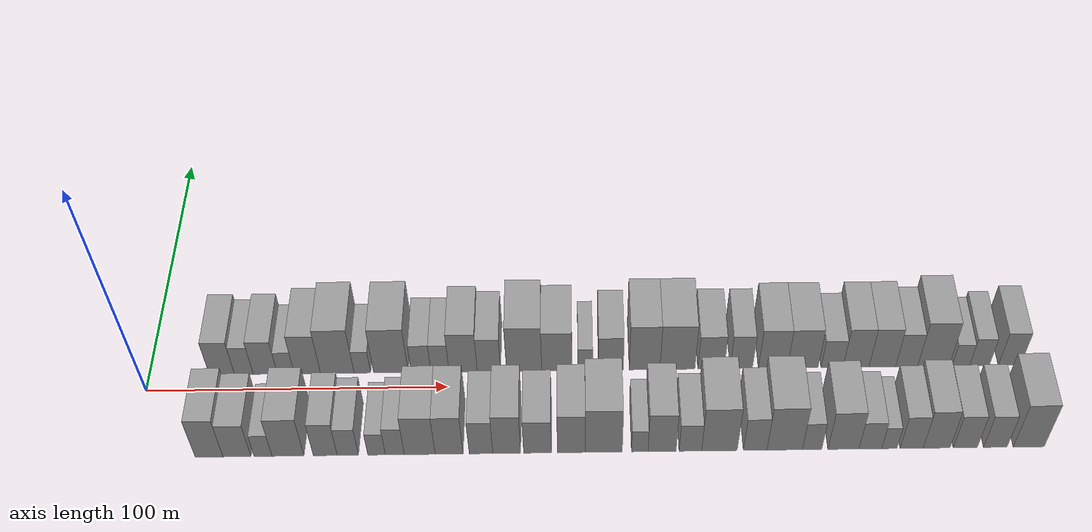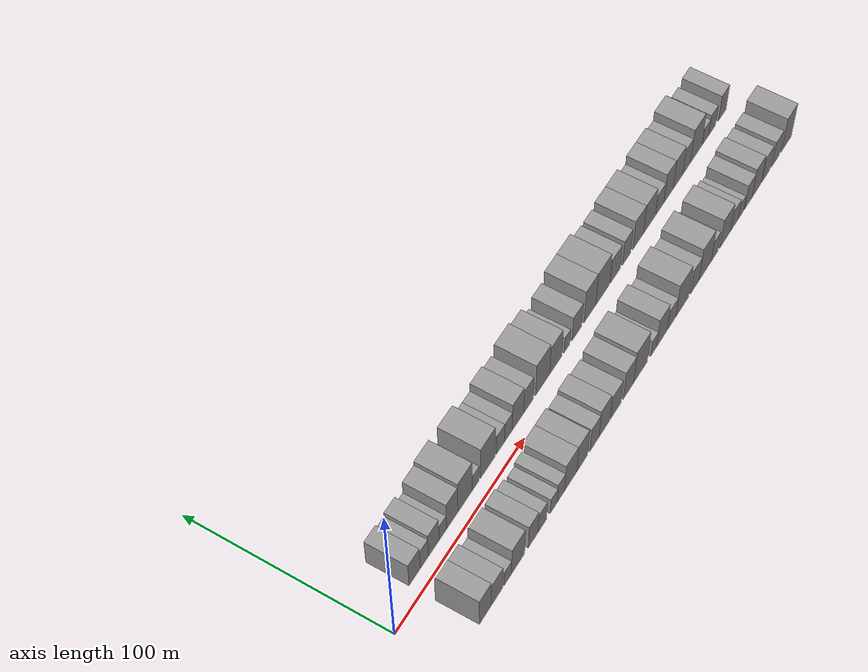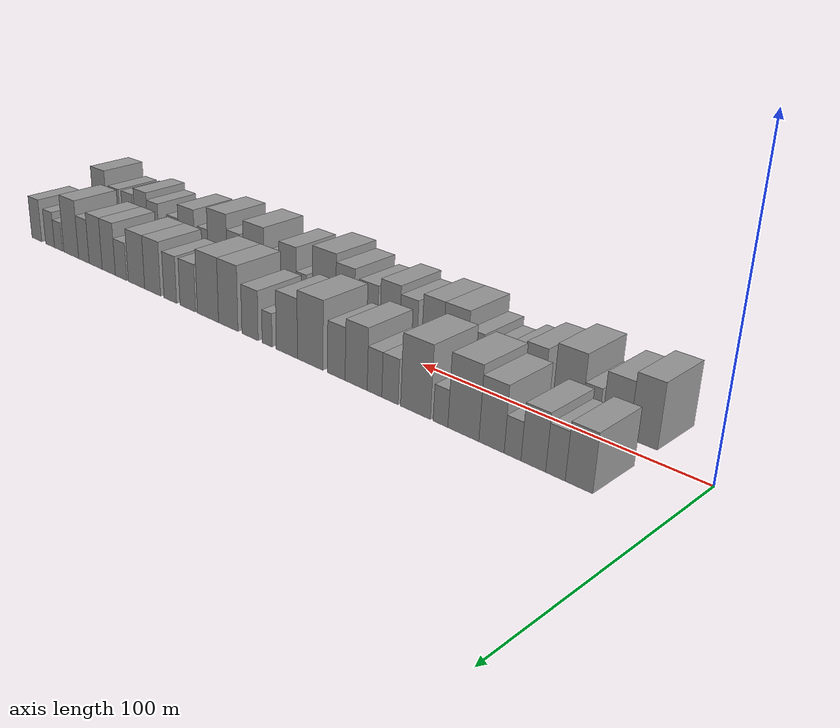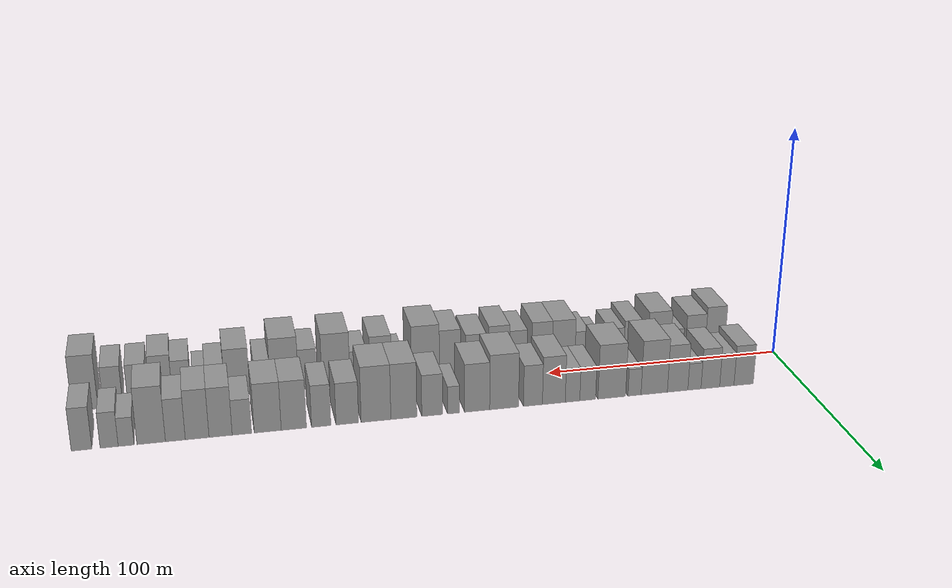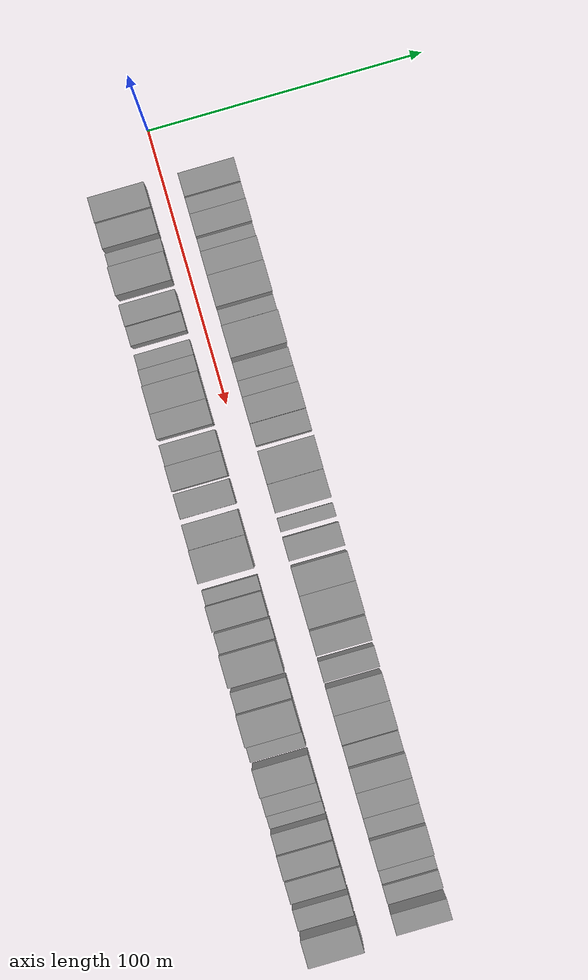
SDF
<sdf version="1.6">
 <world name="default">
  <scene>
   <sky><clouds><speed>12</speed></clouds></sky>
   <ambient>0.4 0.4 0.4 1</ambient>
   <background>0.7 0.7 0.7 1</background>
   <shadows>1</shadows>
  </scene>
  <gravity>0 0 -9.8066</gravity>
  <magnetic_field>6e-06 2.3e-05 -4.2e-05</magnetic_field>
  <physics default="0" name="default_physics" type="ode">
   <ode>
    <solver>
     <type>quick</type>
     <iters>10</iters>
     <sor>1.0</sor>
     <use_dynamic_moi_rescaling>0</use_dynamic_moi_rescaling>
    </solver>
    <constraints>
     <cfm>0</cfm>
     <erp>0.2</erp>
     <contact_max_correcting_vel>100</contact_max_correcting_vel>
     <contact_surface_layer>0.001</contact_surface_layer>
    </constraints>
   </ode>
   <max_step_size>0.004</max_step_size>
   <real_time_factor>1</real_time_factor>
   <real_time_update_rate>250</real_time_update_rate>
  </physics>
  <light name="sun" type="directional">
   <pose>0 0 10 0 0 0</pose>
   <diffuse>0.8 0.8 0.8 1</diffuse>
   <specular>0.2 0.2 0.2 1</specular>
   <attenuation>
    <range>1000</range>
    <constant>0.9</constant>
    <linear>0.01</linear>
    <quadratic>0.001</quadratic>
   </attenuation>
   <direction>-0.5 0.1 -0.9</direction>
  </light>
  <model name="building_1">
   <static>1</static>
   <pose>24.2082 16.0000 0 0.000000 0.000000 1.570796</pose>
   <link name="link">
    <pose>0 0 9.00 0 0 0</pose>
    <collision name="collision"><geometry><box><size>20.0000 8.4164 18.0000</size></box></geometry></collision>
    <visual name="visual">
     <cast_shadows>0</cast_shadows>
     <geometry><box><size>20.0000 8.4164 18.0000</size></box></geometry>
     <material>
      <script>
       <uri>model://grey_wall/materials/scripts</uri>
       <uri>model://grey_wall/materials/textures</uri>
       <name>vrc/grey_wall</name>
      </script>
     </material>
    </visual>
   </link>
  </model>
  <model name="building_2">
   <static>1</static>
   <pose>31.5179 16.0000 0 0.000000 0.000000 1.570796</pose>
   <link name="link">
    <pose>0 0 7.50 0 0 0</pose>
    <collision name="collision"><geometry><box><size>20.0000 6.2030 15.0000</size></box></geometry></collision>
    <visual name="visual">
     <cast_shadows>0</cast_shadows>
     <geometry><box><size>20.0000 6.2030 15.0000</size></box></geometry>
     <material>
      <script>
       <uri>model://grey_wall/materials/scripts</uri>
       <uri>model://grey_wall/materials/textures</uri>
       <name>vrc/grey_wall</name>
      </script>
     </material>
    </visual>
   </link>
  </model>
  <model name="building_3">
   <static>1</static>
   <pose>38.6573 16.0000 0 0.000000 0.000000 1.570796</pose>
   <link name="link">
    <pose>0 0 9.00 0 0 0</pose>
    <collision name="collision"><geometry><box><size>20.0000 8.0756 18.0000</size></box></geometry></collision>
    <visual name="visual">
     <cast_shadows>0</cast_shadows>
     <geometry><box><size>20.0000 8.0756 18.0000</size></box></geometry>
     <material>
      <script>
       <uri>model://grey_wall/materials/scripts</uri>
       <uri>model://grey_wall/materials/textures</uri>
       <name>vrc/grey_wall</name>
      </script>
     </material>
    </visual>
   </link>
  </model>
  <model name="building_4">
   <static>1</static>
   <pose>45.5196 16.0000 0 0.000000 0.000000 1.570796</pose>
   <link name="link">
    <pose>0 0 6.00 0 0 0</pose>
    <collision name="collision"><geometry><box><size>20.0000 5.6489 12.0000</size></box></geometry></collision>
    <visual name="visual">
     <cast_shadows>0</cast_shadows>
     <geometry><box><size>20.0000 5.6489 12.0000</size></box></geometry>
     <material>
      <script>
       <uri>model://grey_wall/materials/scripts</uri>
       <uri>model://grey_wall/materials/textures</uri>
       <name>vrc/grey_wall</name>
      </script>
     </material>
    </visual>
   </link>
  </model>
  <model name="building_5">
   <static>1</static>
   <pose>52.7332 16.0000 0 0.000000 0.000000 1.570796</pose>
   <link name="link">
    <pose>0 0 10.50 0 0 0</pose>
    <collision name="collision"><geometry><box><size>20.0000 8.7784 21.0000</size></box></geometry></collision>
    <visual name="visual">
     <cast_shadows>0</cast_shadows>
     <geometry><box><size>20.0000 8.7784 21.0000</size></box></geometry>
     <material>
      <script>
       <uri>model://grey_wall/materials/scripts</uri>
       <uri>model://grey_wall/materials/textures</uri>
       <name>vrc/grey_wall</name>
      </script>
     </material>
    </visual>
   </link>
  </model>
  <model name="building_6">
   <static>1</static>
   <pose>62.7223 16.0000 0 0.000000 0.000000 1.570796</pose>
   <link name="link">
    <pose>0 0 12.00 0 0 0</pose>
    <collision name="collision"><geometry><box><size>20.0000 11.1996 24.0000</size></box></geometry></collision>
    <visual name="visual">
     <cast_shadows>0</cast_shadows>
     <geometry><box><size>20.0000 11.1996 24.0000</size></box></geometry>
     <material>
      <script>
       <uri>model://grey_wall/materials/scripts</uri>
       <uri>model://grey_wall/materials/textures</uri>
       <name>vrc/grey_wall</name>
      </script>
     </material>
    </visual>
   </link>
  </model>
  <model name="building_7">
   <static>1</static>
   <pose>71.0859 16.0000 0 0.000000 0.000000 1.570796</pose>
   <link name="link">
    <pose>0 0 6.00 0 0 0</pose>
    <collision name="collision"><geometry><box><size>20.0000 5.5277 12.0000</size></box></geometry></collision>
    <visual name="visual">
     <cast_shadows>0</cast_shadows>
     <geometry><box><size>20.0000 5.5277 12.0000</size></box></geometry>
     <material>
      <script>
       <uri>model://grey_wall/materials/scripts</uri>
       <uri>model://grey_wall/materials/textures</uri>
       <name>vrc/grey_wall</name>
      </script>
     </material>
    </visual>
   </link>
  </model>
  <model name="building_8">
   <static>1</static>
   <pose>80.6636 16.0000 0 0.000000 0.000000 1.570796</pose>
   <link name="link">
    <pose>0 0 12.00 0 0 0</pose>
    <collision name="collision"><geometry><box><size>20.0000 11.6277 24.0000</size></box></geometry></collision>
    <visual name="visual">
     <cast_shadows>0</cast_shadows>
     <geometry><box><size>20.0000 11.6277 24.0000</size></box></geometry>
     <material>
      <script>
       <uri>model://grey_wall/materials/scripts</uri>
       <uri>model://grey_wall/materials/textures</uri>
       <name>vrc/grey_wall</name>
      </script>
     </material>
    </visual>
   </link>
  </model>
  <model name="building_9">
   <static>1</static>
   <pose>90.7700 16.0000 0 0.000000 0.000000 1.570796</pose>
   <link name="link">
    <pose>0 0 7.50 0 0 0</pose>
    <collision name="collision"><geometry><box><size>20.0000 6.5849 15.0000</size></box></geometry></collision>
    <visual name="visual">
     <cast_shadows>0</cast_shadows>
     <geometry><box><size>20.0000 6.5849 15.0000</size></box></geometry>
     <material>
      <script>
       <uri>model://grey_wall/materials/scripts</uri>
       <uri>model://grey_wall/materials/textures</uri>
       <name>vrc/grey_wall</name>
      </script>
     </material>
    </visual>
   </link>
  </model>
  <model name="building_10">
   <static>1</static>
   <pose>97.0937 16.0000 0 0.000000 0.000000 1.570796</pose>
   <link name="link">
    <pose>0 0 7.50 0 0 0</pose>
    <collision name="collision"><geometry><box><size>20.0000 6.0625 15.0000</size></box></geometry></collision>
    <visual name="visual">
     <cast_shadows>0</cast_shadows>
     <geometry><box><size>20.0000 6.0625 15.0000</size></box></geometry>
     <material>
      <script>
       <uri>model://grey_wall/materials/scripts</uri>
       <uri>model://grey_wall/materials/textures</uri>
       <name>vrc/grey_wall</name>
      </script>
     </material>
    </visual>
   </link>
  </model>
  <model name="building_11">
   <static>1</static>
   <pose>104.8438 16.0000 0 0.000000 0.000000 1.570796</pose>
   <link name="link">
    <pose>0 0 10.50 0 0 0</pose>
    <collision name="collision"><geometry><box><size>20.0000 9.4377 21.0000</size></box></geometry></collision>
    <visual name="visual">
     <cast_shadows>0</cast_shadows>
     <geometry><box><size>20.0000 9.4377 21.0000</size></box></geometry>
     <material>
      <script>
       <uri>model://grey_wall/materials/scripts</uri>
       <uri>model://grey_wall/materials/textures</uri>
       <name>vrc/grey_wall</name>
      </script>
     </material>
    </visual>
   </link>
  </model>
  <model name="building_12">
   <static>1</static>
   <pose>113.4654 16.0000 0 0.000000 0.000000 1.570796</pose>
   <link name="link">
    <pose>0 0 9.00 0 0 0</pose>
    <collision name="collision"><geometry><box><size>20.0000 7.8055 18.0000</size></box></geometry></collision>
    <visual name="visual">
     <cast_shadows>0</cast_shadows>
     <geometry><box><size>20.0000 7.8055 18.0000</size></box></geometry>
     <material>
      <script>
       <uri>model://grey_wall/materials/scripts</uri>
       <uri>model://grey_wall/materials/textures</uri>
       <name>vrc/grey_wall</name>
      </script>
     </material>
    </visual>
   </link>
  </model>
  <model name="building_13">
   <static>1</static>
   <pose>125.2679 16.0000 0 0.000000 0.000000 1.570796</pose>
   <link name="link">
    <pose>0 0 12.00 0 0 0</pose>
    <collision name="collision"><geometry><box><size>20.0000 11.7995 24.0000</size></box></geometry></collision>
    <visual name="visual">
     <cast_shadows>0</cast_shadows>
     <geometry><box><size>20.0000 11.7995 24.0000</size></box></geometry>
     <material>
      <script>
       <uri>model://grey_wall/materials/scripts</uri>
       <uri>model://grey_wall/materials/textures</uri>
       <name>vrc/grey_wall</name>
      </script>
     </material>
    </visual>
   </link>
  </model>
  <model name="building_14">
   <static>1</static>
   <pose>136.2347 16.0000 0 0.000000 0.000000 1.570796</pose>
   <link name="link">
    <pose>0 0 10.50 0 0 0</pose>
    <collision name="collision"><geometry><box><size>20.0000 10.1341 21.0000</size></box></geometry></collision>
    <visual name="visual">
     <cast_shadows>0</cast_shadows>
     <geometry><box><size>20.0000 10.1341 21.0000</size></box></geometry>
     <material>
      <script>
       <uri>model://grey_wall/materials/scripts</uri>
       <uri>model://grey_wall/materials/textures</uri>
       <name>vrc/grey_wall</name>
      </script>
     </material>
    </visual>
   </link>
  </model>
  <model name="building_15">
   <static>1</static>
   <pose>145.7412 16.0000 0 0.000000 0.000000 1.570796</pose>
   <link name="link">
    <pose>0 0 6.00 0 0 0</pose>
    <collision name="collision"><geometry><box><size>20.0000 4.8789 12.0000</size></box></geometry></collision>
    <visual name="visual">
     <cast_shadows>0</cast_shadows>
     <geometry><box><size>20.0000 4.8789 12.0000</size></box></geometry>
     <material>
      <script>
       <uri>model://grey_wall/materials/scripts</uri>
       <uri>model://grey_wall/materials/textures</uri>
       <name>vrc/grey_wall</name>
      </script>
     </material>
    </visual>
   </link>
  </model>
  <model name="building_16">
   <static>1</static>
   <pose>154.3369 16.0000 0 0.000000 0.000000 1.570796</pose>
   <link name="link">
    <pose>0 0 9.00 0 0 0</pose>
    <collision name="collision"><geometry><box><size>20.0000 8.3127 18.0000</size></box></geometry></collision>
    <visual name="visual">
     <cast_shadows>0</cast_shadows>
     <geometry><box><size>20.0000 8.3127 18.0000</size></box></geometry>
     <material>
      <script>
       <uri>model://grey_wall/materials/scripts</uri>
       <uri>model://grey_wall/materials/textures</uri>
       <name>vrc/grey_wall</name>
      </script>
     </material>
    </visual>
   </link>
  </model>
  <model name="building_17">
   <static>1</static>
   <pose>165.6485 16.0000 0 0.000000 0.000000 1.570796</pose>
   <link name="link">
    <pose>0 0 12.00 0 0 0</pose>
    <collision name="collision"><geometry><box><size>20.0000 10.3104 24.0000</size></box></geometry></collision>
    <visual name="visual">
     <cast_shadows>0</cast_shadows>
     <geometry><box><size>20.0000 10.3104 24.0000</size></box></geometry>
     <material>
      <script>
       <uri>model://grey_wall/materials/scripts</uri>
       <uri>model://grey_wall/materials/textures</uri>
       <name>vrc/grey_wall</name>
      </script>
     </material>
    </visual>
   </link>
  </model>
  <model name="building_18">
   <static>1</static>
   <pose>176.6522 16.0000 0 0.000000 0.000000 1.570796</pose>
   <link name="link">
    <pose>0 0 12.00 0 0 0</pose>
    <collision name="collision"><geometry><box><size>20.0000 11.6972 24.0000</size></box></geometry></collision>
    <visual name="visual">
     <cast_shadows>0</cast_shadows>
     <geometry><box><size>20.0000 11.6972 24.0000</size></box></geometry>
     <material>
      <script>
       <uri>model://grey_wall/materials/scripts</uri>
       <uri>model://grey_wall/materials/textures</uri>
       <name>vrc/grey_wall</name>
      </script>
     </material>
    </visual>
   </link>
  </model>
  <model name="building_19">
   <static>1</static>
   <pose>187.9328 16.0000 0 0.000000 0.000000 1.570796</pose>
   <link name="link">
    <pose>0 0 9.00 0 0 0</pose>
    <collision name="collision"><geometry><box><size>20.0000 8.8639 18.0000</size></box></geometry></collision>
    <visual name="visual">
     <cast_shadows>0</cast_shadows>
     <geometry><box><size>20.0000 8.8639 18.0000</size></box></geometry>
     <material>
      <script>
       <uri>model://grey_wall/materials/scripts</uri>
       <uri>model://grey_wall/materials/textures</uri>
       <name>vrc/grey_wall</name>
      </script>
     </material>
    </visual>
   </link>
  </model>
  <model name="building_20">
   <static>1</static>
   <pose>198.1015 16.0000 0 0.000000 0.000000 1.570796</pose>
   <link name="link">
    <pose>0 0 9.00 0 0 0</pose>
    <collision name="collision"><geometry><box><size>20.0000 7.4735 18.0000</size></box></geometry></collision>
    <visual name="visual">
     <cast_shadows>0</cast_shadows>
     <geometry><box><size>20.0000 7.4735 18.0000</size></box></geometry>
     <material>
      <script>
       <uri>model://grey_wall/materials/scripts</uri>
       <uri>model://grey_wall/materials/textures</uri>
       <name>vrc/grey_wall</name>
      </script>
     </material>
    </visual>
   </link>
  </model>
  <model name="building_21">
   <static>1</static>
   <pose>208.7052 16.0000 0 0.000000 0.000000 1.570796</pose>
   <link name="link">
    <pose>0 0 10.50 0 0 0</pose>
    <collision name="collision"><geometry><box><size>20.0000 9.7339 21.0000</size></box></geometry></collision>
    <visual name="visual">
     <cast_shadows>0</cast_shadows>
     <geometry><box><size>20.0000 9.7339 21.0000</size></box></geometry>
     <material>
      <script>
       <uri>model://grey_wall/materials/scripts</uri>
       <uri>model://grey_wall/materials/textures</uri>
       <name>vrc/grey_wall</name>
      </script>
     </material>
    </visual>
   </link>
  </model>
  <model name="building_22">
   <static>1</static>
   <pose>218.7439 16.0000 0 0.000000 0.000000 1.570796</pose>
   <link name="link">
    <pose>0 0 10.50 0 0 0</pose>
    <collision name="collision"><geometry><box><size>20.0000 10.3436 21.0000</size></box></geometry></collision>
    <visual name="visual">
     <cast_shadows>0</cast_shadows>
     <geometry><box><size>20.0000 10.3436 21.0000</size></box></geometry>
     <material>
      <script>
       <uri>model://grey_wall/materials/scripts</uri>
       <uri>model://grey_wall/materials/textures</uri>
       <name>vrc/grey_wall</name>
      </script>
     </material>
    </visual>
   </link>
  </model>
  <model name="building_23">
   <static>1</static>
   <pose>228.6101 16.0000 0 0.000000 0.000000 1.570796</pose>
   <link name="link">
    <pose>0 0 7.50 0 0 0</pose>
    <collision name="collision"><geometry><box><size>20.0000 7.3887 15.0000</size></box></geometry></collision>
    <visual name="visual">
     <cast_shadows>0</cast_shadows>
     <geometry><box><size>20.0000 7.3887 15.0000</size></box></geometry>
     <material>
      <script>
       <uri>model://grey_wall/materials/scripts</uri>
       <uri>model://grey_wall/materials/textures</uri>
       <name>vrc/grey_wall</name>
      </script>
     </material>
    </visual>
   </link>
  </model>
  <model name="building_24">
   <static>1</static>
   <pose>236.6846 16.0000 0 0.000000 0.000000 1.570796</pose>
   <link name="link">
    <pose>0 0 10.50 0 0 0</pose>
    <collision name="collision"><geometry><box><size>20.0000 8.7604 21.0000</size></box></geometry></collision>
    <visual name="visual">
     <cast_shadows>0</cast_shadows>
     <geometry><box><size>20.0000 8.7604 21.0000</size></box></geometry>
     <material>
      <script>
       <uri>model://grey_wall/materials/scripts</uri>
       <uri>model://grey_wall/materials/textures</uri>
       <name>vrc/grey_wall</name>
      </script>
     </material>
    </visual>
   </link>
  </model>
  <model name="building_25">
   <static>1</static>
   <pose>245.5291 16.0000 0 0.000000 0.000000 1.570796</pose>
   <link name="link">
    <pose>0 0 10.50 0 0 0</pose>
    <collision name="collision"><geometry><box><size>20.0000 8.9286 21.0000</size></box></geometry></collision>
    <visual name="visual">
     <cast_shadows>0</cast_shadows>
     <geometry><box><size>20.0000 8.9286 21.0000</size></box></geometry>
     <material>
      <script>
       <uri>model://grey_wall/materials/scripts</uri>
       <uri>model://grey_wall/materials/textures</uri>
       <name>vrc/grey_wall</name>
      </script>
     </material>
    </visual>
   </link>
  </model>
  <model name="building_26">
   <static>1</static>
   <pose>253.7063 16.0000 0 0.000000 0.000000 1.570796</pose>
   <link name="link">
    <pose>0 0 9.00 0 0 0</pose>
    <collision name="collision"><geometry><box><size>20.0000 7.4258 18.0000</size></box></geometry></collision>
    <visual name="visual">
     <cast_shadows>0</cast_shadows>
     <geometry><box><size>20.0000 7.4258 18.0000</size></box></geometry>
     <material>
      <script>
       <uri>model://grey_wall/materials/scripts</uri>
       <uri>model://grey_wall/materials/textures</uri>
       <name>vrc/grey_wall</name>
      </script>
     </material>
    </visual>
   </link>
  </model>
  <model name="building_27">
   <static>1</static>
   <pose>262.7256 16.0000 0 0.000000 0.000000 1.570796</pose>
   <link name="link">
    <pose>0 0 12.00 0 0 0</pose>
    <collision name="collision"><geometry><box><size>20.0000 10.6129 24.0000</size></box></geometry></collision>
    <visual name="visual">
     <cast_shadows>0</cast_shadows>
     <geometry><box><size>20.0000 10.6129 24.0000</size></box></geometry>
     <material>
      <script>
       <uri>model://grey_wall/materials/scripts</uri>
       <uri>model://grey_wall/materials/textures</uri>
       <name>vrc/grey_wall</name>
      </script>
     </material>
    </visual>
   </link>
  </model>
  <model name="building_28">
   <static>1</static>
   <pose>271.9829 16.0000 0 0.000000 0.000000 1.570796</pose>
   <link name="link">
    <pose>0 0 6.00 0 0 0</pose>
    <collision name="collision"><geometry><box><size>20.0000 5.9017 12.0000</size></box></geometry></collision>
    <visual name="visual">
     <cast_shadows>0</cast_shadows>
     <geometry><box><size>20.0000 5.9017 12.0000</size></box></geometry>
     <material>
      <script>
       <uri>model://grey_wall/materials/scripts</uri>
       <uri>model://grey_wall/materials/textures</uri>
       <name>vrc/grey_wall</name>
      </script>
     </material>
    </visual>
   </link>
  </model>
  <model name="building_29">
   <static>1</static>
   <pose>278.2577 16.0000 0 0.000000 0.000000 1.570796</pose>
   <link name="link">
    <pose>0 0 7.50 0 0 0</pose>
    <collision name="collision"><geometry><box><size>20.0000 6.6477 15.0000</size></box></geometry></collision>
    <visual name="visual">
     <cast_shadows>0</cast_shadows>
     <geometry><box><size>20.0000 6.6477 15.0000</size></box></geometry>
     <material>
      <script>
       <uri>model://grey_wall/materials/scripts</uri>
       <uri>model://grey_wall/materials/textures</uri>
       <name>vrc/grey_wall</name>
      </script>
     </material>
    </visual>
   </link>
  </model>
  <model name="building_30">
   <static>1</static>
   <pose>288.3576 16.0000 0 0.000000 0.000000 1.570796</pose>
   <link name="link">
    <pose>0 0 9.00 0 0 0</pose>
    <collision name="collision"><geometry><box><size>20.0000 7.5522 18.0000</size></box></geometry></collision>
    <visual name="visual">
     <cast_shadows>0</cast_shadows>
     <geometry><box><size>20.0000 7.5522 18.0000</size></box></geometry>
     <material>
      <script>
       <uri>model://grey_wall/materials/scripts</uri>
       <uri>model://grey_wall/materials/textures</uri>
       <name>vrc/grey_wall</name>
      </script>
     </material>
    </visual>
   </link>
  </model>
  <model name="building_31">
   <static>1</static>
   <pose>24.4624 -16.0000 0 0.000000 0.000000 1.570796</pose>
   <link name="link">
    <pose>0 0 10.50 0 0 0</pose>
    <collision name="collision"><geometry><box><size>20.0000 8.9249 21.0000</size></box></geometry></collision>
    <visual name="visual">
     <cast_shadows>0</cast_shadows>
     <geometry><box><size>20.0000 8.9249 21.0000</size></box></geometry>
     <material>
      <script>
       <uri>model://grey_wall/materials/scripts</uri>
       <uri>model://grey_wall/materials/textures</uri>
       <name>vrc/grey_wall</name>
      </script>
     </material>
    </visual>
   </link>
  </model>
  <model name="building_32">
   <static>1</static>
   <pose>33.4069 -16.0000 0 0.000000 0.000000 1.570796</pose>
   <link name="link">
    <pose>0 0 9.00 0 0 0</pose>
    <collision name="collision"><geometry><box><size>20.0000 8.9641 18.0000</size></box></geometry></collision>
    <visual name="visual">
     <cast_shadows>0</cast_shadows>
     <geometry><box><size>20.0000 8.9641 18.0000</size></box></geometry>
     <material>
      <script>
       <uri>model://grey_wall/materials/scripts</uri>
       <uri>model://grey_wall/materials/textures</uri>
       <name>vrc/grey_wall</name>
      </script>
     </material>
    </visual>
   </link>
  </model>
  <model name="building_33">
   <static>1</static>
   <pose>41.7586 -16.0000 0 0.000000 0.000000 1.570796</pose>
   <link name="link">
    <pose>0 0 6.00 0 0 0</pose>
    <collision name="collision"><geometry><box><size>20.0000 5.7392 12.0000</size></box></geometry></collision>
    <visual name="visual">
     <cast_shadows>0</cast_shadows>
     <geometry><box><size>20.0000 5.7392 12.0000</size></box></geometry>
     <material>
      <script>
       <uri>model://grey_wall/materials/scripts</uri>
       <uri>model://grey_wall/materials/textures</uri>
       <name>vrc/grey_wall</name>
      </script>
     </material>
    </visual>
   </link>
  </model>
  <model name="building_34">
   <static>1</static>
   <pose>49.7499 -16.0000 0 0.000000 0.000000 1.570796</pose>
   <link name="link">
    <pose>0 0 10.50 0 0 0</pose>
    <collision name="collision"><geometry><box><size>20.0000 10.2434 21.0000</size></box></geometry></collision>
    <visual name="visual">
     <cast_shadows>0</cast_shadows>
     <geometry><box><size>20.0000 10.2434 21.0000</size></box></geometry>
     <material>
      <script>
       <uri>model://grey_wall/materials/scripts</uri>
       <uri>model://grey_wall/materials/textures</uri>
       <name>vrc/grey_wall</name>
      </script>
     </material>
    </visual>
   </link>
  </model>
  <model name="building_35">
   <static>1</static>
   <pose>61.7114 -16.0000 0 0.000000 0.000000 1.570796</pose>
   <link name="link">
    <pose>0 0 9.00 0 0 0</pose>
    <collision name="collision"><geometry><box><size>20.0000 7.6796 18.0000</size></box></geometry></collision>
    <visual name="visual">
     <cast_shadows>0</cast_shadows>
     <geometry><box><size>20.0000 7.6796 18.0000</size></box></geometry>
     <material>
      <script>
       <uri>model://grey_wall/materials/scripts</uri>
       <uri>model://grey_wall/materials/textures</uri>
       <name>vrc/grey_wall</name>
      </script>
     </material>
    </visual>
   </link>
  </model>
  <model name="building_36">
   <static>1</static>
   <pose>68.9586 -16.0000 0 0.000000 0.000000 1.570796</pose>
   <link name="link">
    <pose>0 0 7.50 0 0 0</pose>
    <collision name="collision"><geometry><box><size>20.0000 6.8148 15.0000</size></box></geometry></collision>
    <visual name="visual">
     <cast_shadows>0</cast_shadows>
     <geometry><box><size>20.0000 6.8148 15.0000</size></box></geometry>
     <material>
      <script>
       <uri>model://grey_wall/materials/scripts</uri>
       <uri>model://grey_wall/materials/textures</uri>
       <name>vrc/grey_wall</name>
      </script>
     </material>
    </visual>
   </link>
  </model>
  <model name="building_37">
   <static>1</static>
   <pose>78.1835 -16.0000 0 0.000000 0.000000 1.570796</pose>
   <link name="link">
    <pose>0 0 6.00 0 0 0</pose>
    <collision name="collision"><geometry><box><size>20.0000 5.6351 12.0000</size></box></geometry></collision>
    <visual name="visual">
     <cast_shadows>0</cast_shadows>
     <geometry><box><size>20.0000 5.6351 12.0000</size></box></geometry>
     <material>
      <script>
       <uri>model://grey_wall/materials/scripts</uri>
       <uri>model://grey_wall/materials/textures</uri>
       <name>vrc/grey_wall</name>
      </script>
     </material>
    </visual>
   </link>
  </model>
  <model name="building_38">
   <static>1</static>
   <pose>84.0362 -16.0000 0 0.000000 0.000000 1.570796</pose>
   <link name="link">
    <pose>0 0 7.50 0 0 0</pose>
    <collision name="collision"><geometry><box><size>20.0000 6.0703 15.0000</size></box></geometry></collision>
    <visual name="visual">
     <cast_shadows>0</cast_shadows>
     <geometry><box><size>20.0000 6.0703 15.0000</size></box></geometry>
     <material>
      <script>
       <uri>model://grey_wall/materials/scripts</uri>
       <uri>model://grey_wall/materials/textures</uri>
       <name>vrc/grey_wall</name>
      </script>
     </material>
    </visual>
   </link>
  </model>
  <model name="building_39">
   <static>1</static>
   <pose>92.0460 -16.0000 0 0.000000 0.000000 1.570796</pose>
   <link name="link">
    <pose>0 0 10.50 0 0 0</pose>
    <collision name="collision"><geometry><box><size>20.0000 9.9493 21.0000</size></box></geometry></collision>
    <visual name="visual">
     <cast_shadows>0</cast_shadows>
     <geometry><box><size>20.0000 9.9493 21.0000</size></box></geometry>
     <material>
      <script>
       <uri>model://grey_wall/materials/scripts</uri>
       <uri>model://grey_wall/materials/textures</uri>
       <name>vrc/grey_wall</name>
      </script>
     </material>
    </visual>
   </link>
  </model>
  <model name="building_40">
   <static>1</static>
   <pose>101.4975 -16.0000 0 0.000000 0.000000 1.570796</pose>
   <link name="link">
    <pose>0 0 10.50 0 0 0</pose>
    <collision name="collision"><geometry><box><size>20.0000 8.9536 21.0000</size></box></geometry></collision>
    <visual name="visual">
     <cast_shadows>0</cast_shadows>
     <geometry><box><size>20.0000 8.9536 21.0000</size></box></geometry>
     <material>
      <script>
       <uri>model://grey_wall/materials/scripts</uri>
       <uri>model://grey_wall/materials/textures</uri>
       <name>vrc/grey_wall</name>
      </script>
     </material>
    </visual>
   </link>
  </model>
  <model name="building_41">
   <static>1</static>
   <pose>111.7719 -16.0000 0 0.000000 0.000000 1.570796</pose>
   <link name="link">
    <pose>0 0 9.00 0 0 0</pose>
    <collision name="collision"><geometry><box><size>20.0000 7.5953 18.0000</size></box></geometry></collision>
    <visual name="visual">
     <cast_shadows>0</cast_shadows>
     <geometry><box><size>20.0000 7.5953 18.0000</size></box></geometry>
     <material>
      <script>
       <uri>model://grey_wall/materials/scripts</uri>
       <uri>model://grey_wall/materials/textures</uri>
       <name>vrc/grey_wall</name>
      </script>
     </material>
    </visual>
   </link>
  </model>
  <model name="building_42">
   <static>1</static>
   <pose>120.0311 -16.0000 0 0.000000 0.000000 1.570796</pose>
   <link name="link">
    <pose>0 0 10.50 0 0 0</pose>
    <collision name="collision"><geometry><box><size>20.0000 8.9230 21.0000</size></box></geometry></collision>
    <visual name="visual">
     <cast_shadows>0</cast_shadows>
     <geometry><box><size>20.0000 8.9230 21.0000</size></box></geometry>
     <material>
      <script>
       <uri>model://grey_wall/materials/scripts</uri>
       <uri>model://grey_wall/materials/textures</uri>
       <name>vrc/grey_wall</name>
      </script>
     </material>
    </visual>
   </link>
  </model>
  <model name="building_43">
   <static>1</static>
   <pose>129.9465 -16.0000 0 0.000000 0.000000 1.570796</pose>
   <link name="link">
    <pose>0 0 9.00 0 0 0</pose>
    <collision name="collision"><geometry><box><size>20.0000 8.9079 18.0000</size></box></geometry></collision>
    <visual name="visual">
     <cast_shadows>0</cast_shadows>
     <geometry><box><size>20.0000 8.9079 18.0000</size></box></geometry>
     <material>
      <script>
       <uri>model://grey_wall/materials/scripts</uri>
       <uri>model://grey_wall/materials/textures</uri>
       <name>vrc/grey_wall</name>
      </script>
     </material>
    </visual>
   </link>
  </model>
  <model name="building_44">
   <static>1</static>
   <pose>140.9043 -16.0000 0 0.000000 0.000000 1.570796</pose>
   <link name="link">
    <pose>0 0 10.50 0 0 0</pose>
    <collision name="collision"><geometry><box><size>20.0000 9.0077 21.0000</size></box></geometry></collision>
    <visual name="visual">
     <cast_shadows>0</cast_shadows>
     <geometry><box><size>20.0000 9.0077 21.0000</size></box></geometry>
     <material>
      <script>
       <uri>model://grey_wall/materials/scripts</uri>
       <uri>model://grey_wall/materials/textures</uri>
       <name>vrc/grey_wall</name>
      </script>
     </material>
    </visual>
   </link>
  </model>
  <model name="building_45">
   <static>1</static>
   <pose>151.3033 -16.0000 0 0.000000 0.000000 1.570796</pose>
   <link name="link">
    <pose>0 0 12.00 0 0 0</pose>
    <collision name="collision"><geometry><box><size>20.0000 11.7904 24.0000</size></box></geometry></collision>
    <visual name="visual">
     <cast_shadows>0</cast_shadows>
     <geometry><box><size>20.0000 11.7904 24.0000</size></box></geometry>
     <material>
      <script>
       <uri>model://grey_wall/materials/scripts</uri>
       <uri>model://grey_wall/materials/textures</uri>
       <name>vrc/grey_wall</name>
      </script>
     </material>
    </visual>
   </link>
  </model>
  <model name="building_46">
   <static>1</static>
   <pose>162.8481 -16.0000 0 0.000000 0.000000 1.570796</pose>
   <link name="link">
    <pose>0 0 6.00 0 0 0</pose>
    <collision name="collision"><geometry><box><size>20.0000 5.2992 12.0000</size></box></geometry></collision>
    <visual name="visual">
     <cast_shadows>0</cast_shadows>
     <geometry><box><size>20.0000 5.2992 12.0000</size></box></geometry>
     <material>
      <script>
       <uri>model://grey_wall/materials/scripts</uri>
       <uri>model://grey_wall/materials/textures</uri>
       <name>vrc/grey_wall</name>
      </script>
     </material>
    </visual>
   </link>
  </model>
  <model name="building_47">
   <static>1</static>
   <pose>170.0178 -16.0000 0 0.000000 0.000000 1.570796</pose>
   <link name="link">
    <pose>0 0 10.50 0 0 0</pose>
    <collision name="collision"><geometry><box><size>20.0000 9.0403 21.0000</size></box></geometry></collision>
    <visual name="visual">
     <cast_shadows>0</cast_shadows>
     <geometry><box><size>20.0000 9.0403 21.0000</size></box></geometry>
     <material>
      <script>
       <uri>model://grey_wall/materials/scripts</uri>
       <uri>model://grey_wall/materials/textures</uri>
       <name>vrc/grey_wall</name>
      </script>
     </material>
    </visual>
   </link>
  </model>
  <model name="building_48">
   <static>1</static>
   <pose>179.1575 -16.0000 0 0.000000 0.000000 1.570796</pose>
   <link name="link">
    <pose>0 0 7.50 0 0 0</pose>
    <collision name="collision"><geometry><box><size>20.0000 7.2392 15.0000</size></box></geometry></collision>
    <visual name="visual">
     <cast_shadows>0</cast_shadows>
     <geometry><box><size>20.0000 7.2392 15.0000</size></box></geometry>
     <material>
      <script>
       <uri>model://grey_wall/materials/scripts</uri>
       <uri>model://grey_wall/materials/textures</uri>
       <name>vrc/grey_wall</name>
      </script>
     </material>
    </visual>
   </link>
  </model>
  <model name="building_49">
   <static>1</static>
   <pose>188.5196 -16.0000 0 0.000000 0.000000 1.570796</pose>
   <link name="link">
    <pose>0 0 12.00 0 0 0</pose>
    <collision name="collision"><geometry><box><size>20.0000 11.4849 24.0000</size></box></geometry></collision>
    <visual name="visual">
     <cast_shadows>0</cast_shadows>
     <geometry><box><size>20.0000 11.4849 24.0000</size></box></geometry>
     <material>
      <script>
       <uri>model://grey_wall/materials/scripts</uri>
       <uri>model://grey_wall/materials/textures</uri>
       <name>vrc/grey_wall</name>
      </script>
     </material>
    </visual>
   </link>
  </model>
  <model name="building_50">
   <static>1</static>
   <pose>200.0635 -16.0000 0 0.000000 0.000000 1.570796</pose>
   <link name="link">
    <pose>0 0 9.00 0 0 0</pose>
    <collision name="collision"><geometry><box><size>20.0000 7.6030 18.0000</size></box></geometry></collision>
    <visual name="visual">
     <cast_shadows>0</cast_shadows>
     <geometry><box><size>20.0000 7.6030 18.0000</size></box></geometry>
     <material>
      <script>
       <uri>model://grey_wall/materials/scripts</uri>
       <uri>model://grey_wall/materials/textures</uri>
       <name>vrc/grey_wall</name>
      </script>
     </material>
    </visual>
   </link>
  </model>
  <model name="building_51">
   <static>1</static>
   <pose>209.5855 -16.0000 0 0.000000 0.000000 1.570796</pose>
   <link name="link">
    <pose>0 0 12.00 0 0 0</pose>
    <collision name="collision"><geometry><box><size>20.0000 11.4408 24.0000</size></box></geometry></collision>
    <visual name="visual">
     <cast_shadows>0</cast_shadows>
     <geometry><box><size>20.0000 11.4408 24.0000</size></box></geometry>
     <material>
      <script>
       <uri>model://grey_wall/materials/scripts</uri>
       <uri>model://grey_wall/materials/textures</uri>
       <name>vrc/grey_wall</name>
      </script>
     </material>
    </visual>
   </link>
  </model>
  <model name="building_52">
   <static>1</static>
   <pose>218.4262 -16.0000 0 0.000000 0.000000 1.570796</pose>
   <link name="link">
    <pose>0 0 7.50 0 0 0</pose>
    <collision name="collision"><geometry><box><size>20.0000 6.2406 15.0000</size></box></geometry></collision>
    <visual name="visual">
     <cast_shadows>0</cast_shadows>
     <geometry><box><size>20.0000 6.2406 15.0000</size></box></geometry>
     <material>
      <script>
       <uri>model://grey_wall/materials/scripts</uri>
       <uri>model://grey_wall/materials/textures</uri>
       <name>vrc/grey_wall</name>
      </script>
     </material>
    </visual>
   </link>
  </model>
  <model name="building_53">
   <static>1</static>
   <pose>228.5655 -16.0000 0 0.000000 0.000000 1.570796</pose>
   <link name="link">
    <pose>0 0 10.50 0 0 0</pose>
    <collision name="collision"><geometry><box><size>20.0000 10.0379 21.0000</size></box></geometry></collision>
    <visual name="visual">
     <cast_shadows>0</cast_shadows>
     <geometry><box><size>20.0000 10.0379 21.0000</size></box></geometry>
     <material>
      <script>
       <uri>model://grey_wall/materials/scripts</uri>
       <uri>model://grey_wall/materials/textures</uri>
       <name>vrc/grey_wall</name>
      </script>
     </material>
    </visual>
   </link>
  </model>
  <model name="building_54">
   <static>1</static>
   <pose>237.2709 -16.0000 0 0.000000 0.000000 1.570796</pose>
   <link name="link">
    <pose>0 0 7.50 0 0 0</pose>
    <collision name="collision"><geometry><box><size>20.0000 7.3729 15.0000</size></box></geometry></collision>
    <visual name="visual">
     <cast_shadows>0</cast_shadows>
     <geometry><box><size>20.0000 7.3729 15.0000</size></box></geometry>
     <material>
      <script>
       <uri>model://grey_wall/materials/scripts</uri>
       <uri>model://grey_wall/materials/textures</uri>
       <name>vrc/grey_wall</name>
      </script>
     </material>
    </visual>
   </link>
  </model>
  <model name="building_55">
   <static>1</static>
   <pose>243.4143 -16.0000 0 0.000000 0.000000 1.570796</pose>
   <link name="link">
    <pose>0 0 6.00 0 0 0</pose>
    <collision name="collision"><geometry><box><size>20.0000 4.9140 12.0000</size></box></geometry></collision>
    <visual name="visual">
     <cast_shadows>0</cast_shadows>
     <geometry><box><size>20.0000 4.9140 12.0000</size></box></geometry>
     <material>
      <script>
       <uri>model://grey_wall/materials/scripts</uri>
       <uri>model://grey_wall/materials/textures</uri>
       <name>vrc/grey_wall</name>
      </script>
     </material>
    </visual>
   </link>
  </model>
  <model name="building_56">
   <static>1</static>
   <pose>250.5929 -16.0000 0 0.000000 0.000000 1.570796</pose>
   <link name="link">
    <pose>0 0 9.00 0 0 0</pose>
    <collision name="collision"><geometry><box><size>20.0000 7.4432 18.0000</size></box></geometry></collision>
    <visual name="visual">
     <cast_shadows>0</cast_shadows>
     <geometry><box><size>20.0000 7.4432 18.0000</size></box></geometry>
     <material>
      <script>
       <uri>model://grey_wall/materials/scripts</uri>
       <uri>model://grey_wall/materials/textures</uri>
       <name>vrc/grey_wall</name>
      </script>
     </material>
    </visual>
   </link>
  </model>
  <model name="building_57">
   <static>1</static>
   <pose>258.6825 -16.0000 0 0.000000 0.000000 1.570796</pose>
   <link name="link">
    <pose>0 0 10.50 0 0 0</pose>
    <collision name="collision"><geometry><box><size>20.0000 8.7361 21.0000</size></box></geometry></collision>
    <visual name="visual">
     <cast_shadows>0</cast_shadows>
     <geometry><box><size>20.0000 8.7361 21.0000</size></box></geometry>
     <material>
      <script>
       <uri>model://grey_wall/materials/scripts</uri>
       <uri>model://grey_wall/materials/textures</uri>
       <name>vrc/grey_wall</name>
      </script>
     </material>
    </visual>
   </link>
  </model>
  <model name="building_58">
   <static>1</static>
   <pose>267.9493 -16.0000 0 0.000000 0.000000 1.570796</pose>
   <link name="link">
    <pose>0 0 9.00 0 0 0</pose>
    <collision name="collision"><geometry><box><size>20.0000 7.7975 18.0000</size></box></geometry></collision>
    <visual name="visual">
     <cast_shadows>0</cast_shadows>
     <geometry><box><size>20.0000 7.7975 18.0000</size></box></geometry>
     <material>
      <script>
       <uri>model://grey_wall/materials/scripts</uri>
       <uri>model://grey_wall/materials/textures</uri>
       <name>vrc/grey_wall</name>
      </script>
     </material>
    </visual>
   </link>
  </model>
  <model name="building_59">
   <static>1</static>
   <pose>277.6615 -16.0000 0 0.000000 0.000000 1.570796</pose>
   <link name="link">
    <pose>0 0 9.00 0 0 0</pose>
    <collision name="collision"><geometry><box><size>20.0000 7.6269 18.0000</size></box></geometry></collision>
    <visual name="visual">
     <cast_shadows>0</cast_shadows>
     <geometry><box><size>20.0000 7.6269 18.0000</size></box></geometry>
     <material>
      <script>
       <uri>model://grey_wall/materials/scripts</uri>
       <uri>model://grey_wall/materials/textures</uri>
       <name>vrc/grey_wall</name>
      </script>
     </material>
    </visual>
   </link>
  </model>
  <model name="building_60">
   <static>1</static>
   <pose>288.4911 -16.0000 0 0.000000 0.000000 1.570796</pose>
   <link name="link">
    <pose>0 0 12.00 0 0 0</pose>
    <collision name="collision"><geometry><box><size>20.0000 10.0323 24.0000</size></box></geometry></collision>
    <visual name="visual">
     <cast_shadows>0</cast_shadows>
     <geometry><box><size>20.0000 10.0323 24.0000</size></box></geometry>
     <material>
      <script>
       <uri>model://grey_wall/materials/scripts</uri>
       <uri>model://grey_wall/materials/textures</uri>
       <name>vrc/grey_wall</name>
      </script>
     </material>
    </visual>
   </link>
  </model>
 </world>
</sdf>
